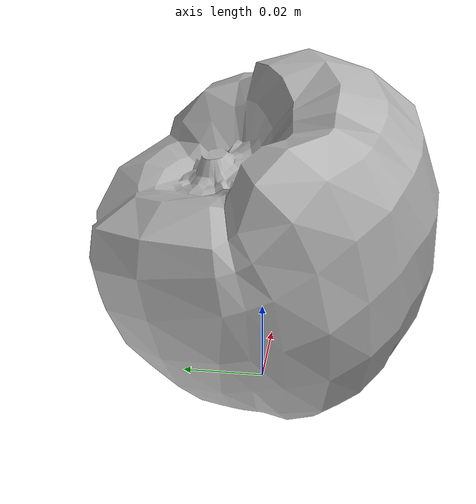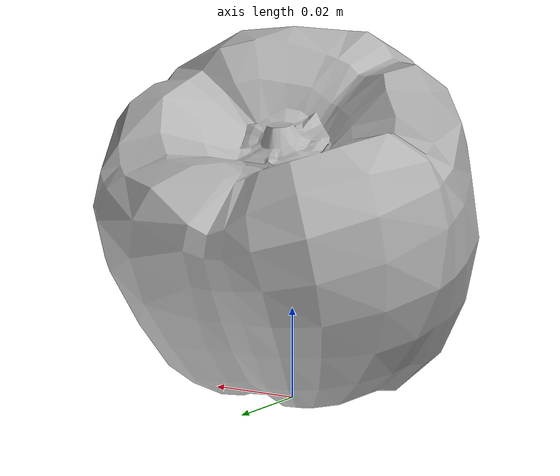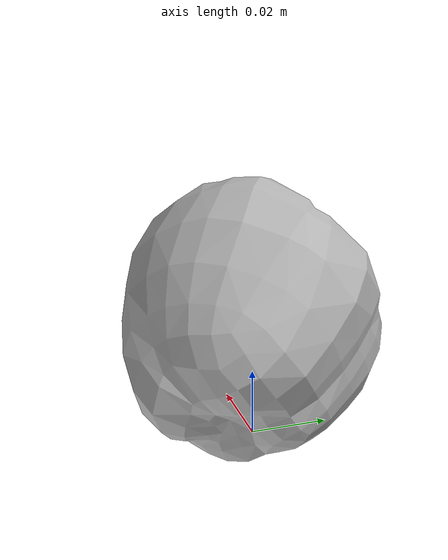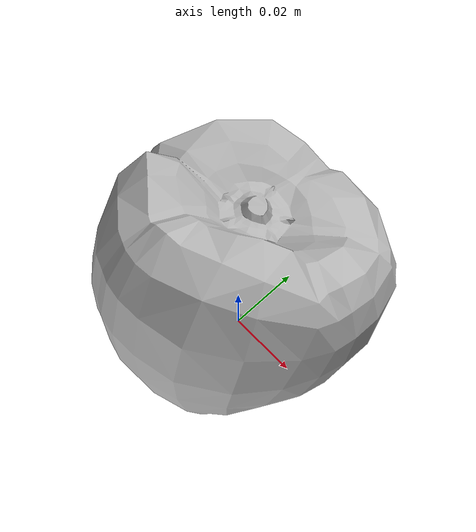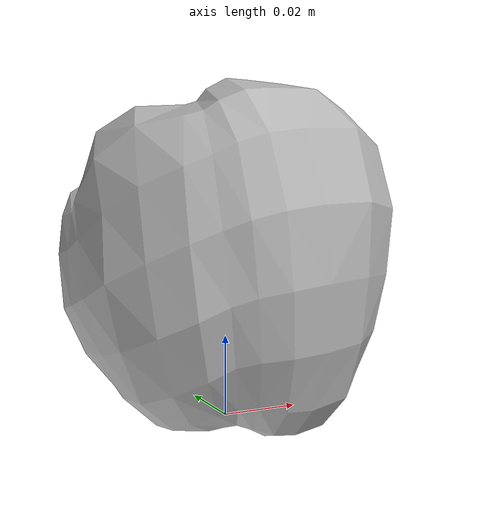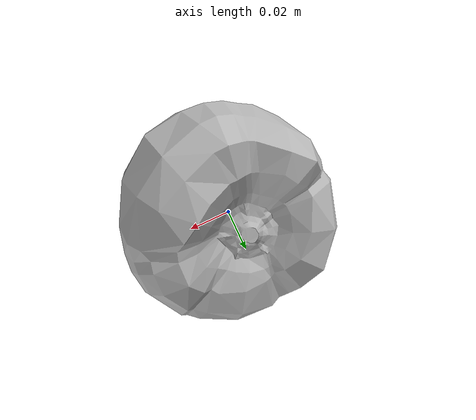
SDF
<?xml version="1.0"?>
<sdf version="1.7" xmlns:drake="drake.mit.edu">
  <model name="yellow_bell_pepper_no_stem">
    <link name="yellow_bell_pepper_no_stem">
      <pose>0 0 0 0 0 0</pose>
      <inertial>
        <pose>0.000537 -0.00272 0.0384 0 0 0</pose>
        <mass>0.159</mass>
        <inertia>
          <ixx> 0.000101</ixx>
          <ixy>-0.000001</ixy>
          <ixz>-0.000004</ixz>
          <iyy> 0.000105</iyy>
          <iyz> 0.000007</iyz>
          <izz> 0.000107</izz>
        </inertia>
      </inertial>
      <visual name="yellow_bell_pepper_no_stem">
        <pose>0 0 0 0 0 0</pose>
        <geometry>
          <mesh>
            <uri>yellow_bell_pepper_no_stem_low.obj</uri>
            <scale>1.0 1.0 1.0</scale>
          </mesh>
        </geometry>
        <material>
          <drake:diffuse_map>bell_pepper_no_stem_color.png</drake:diffuse_map>
        </material>
      </visual>
      <collision name="collision">
        <pose>0 0 0 0 0 0</pose>
        <geometry>
          <mesh>
            <uri>yellow_bell_pepper_no_stem_low.vtk</uri>
            <scale>1 1 1</scale>
          </mesh>
        </geometry>
        <drake:proximity_properties>
          <drake:compliant_hydroelastic/>
          <drake:hydroelastic_modulus>5.0e4</drake:hydroelastic_modulus>
          <!-- Resolution hint is no-op for mesh. It's here in case you want
               to change it to something else (capsule, cylinder, ellipsoid, sphere). -->
          <drake:mesh_resolution_hint>0.005</drake:mesh_resolution_hint>
          <drake:hunt_crossley_dissipation> 10 </drake:hunt_crossley_dissipation>
          <!-- Both mu_dynamic and mu_static are used in Continuous system.
            Only mu_dynamic is used in Discrete system.  -->
          <drake:mu_dynamic>1.0</drake:mu_dynamic>
          <drake:mu_static>1.0</drake:mu_static>
        </drake:proximity_properties>
      </collision>
    </link>
    <frame name="origin">
      <pose relative_to="yellow_bell_pepper_no_stem">0 0 0 0 0 0</pose>
    </frame>
    <frame name="flush_bottom_center__z_up">
      <pose relative_to="yellow_bell_pepper_no_stem">0 0 0 0 0 0</pose>
    </frame>
  </model>
</sdf>
